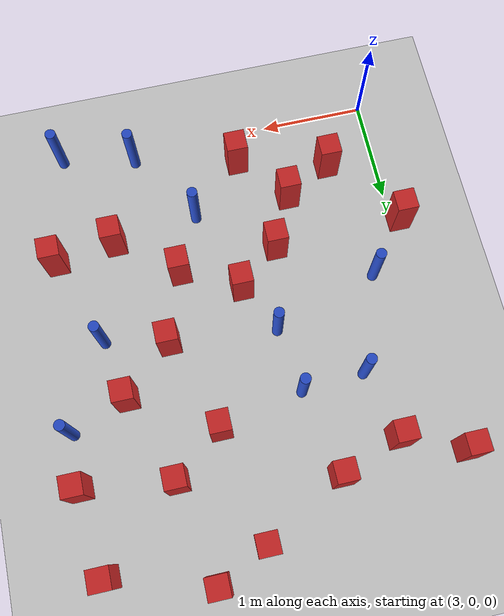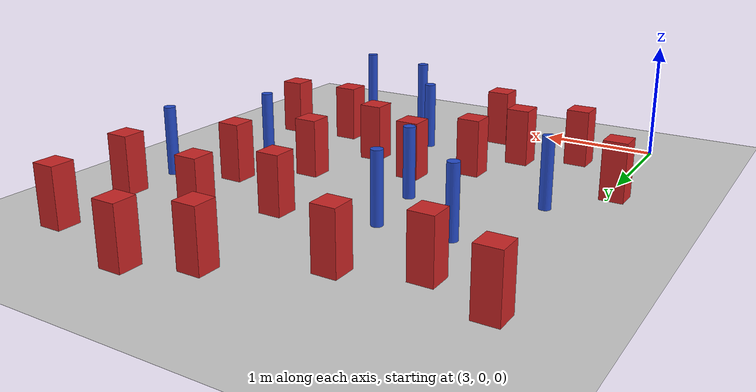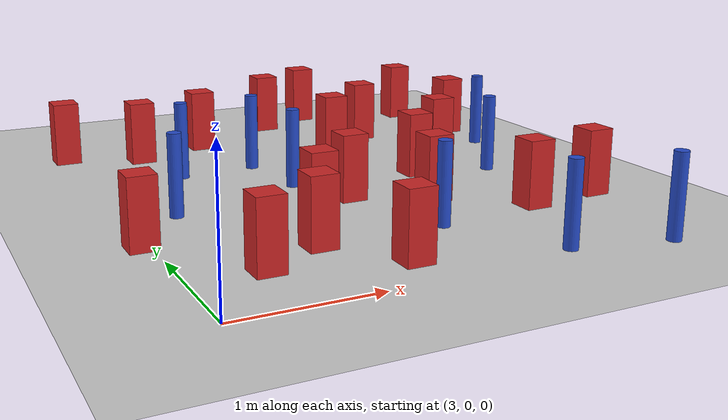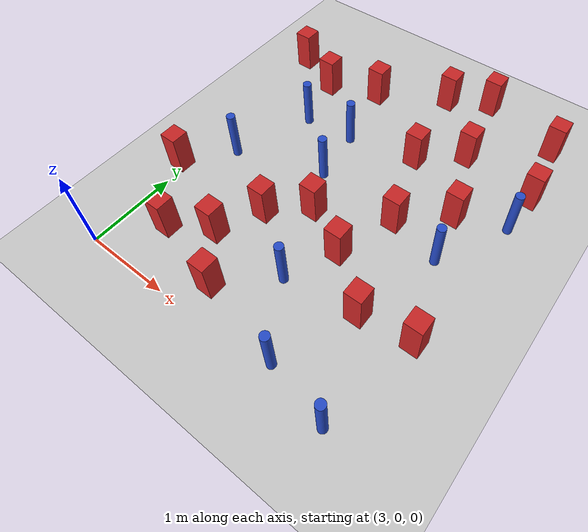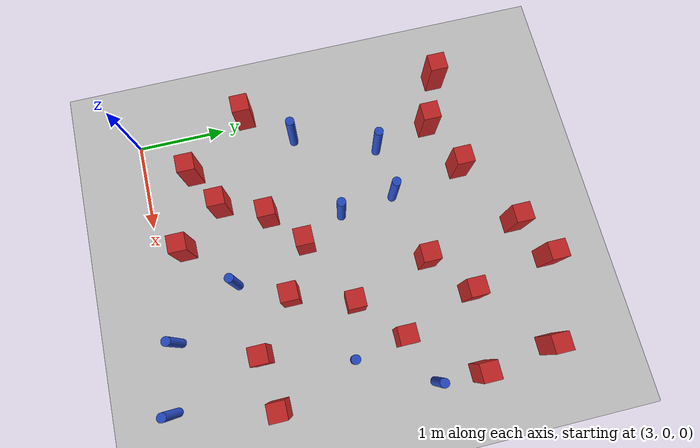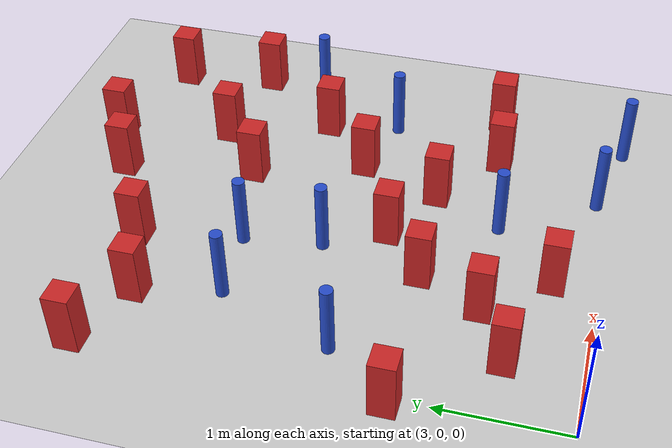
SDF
<sdf version="1.6">
 <world name="default">
  <model name="ground_plane">
   <static>1</static>
   <link name="link">
    <collision name="collision">
     <geometry><plane><normal>0 0 1</normal><size>100 100</size></plane></geometry>
     <surface><friction><ode><mu>100</mu><mu2>50</mu2></ode></friction></surface>
    </collision>
    <visual name="visual">
     <cast_shadows>0</cast_shadows>
     <geometry><plane><normal>0 0 1</normal><size>100 100</size></plane></geometry>
     <material>
      <ambient>1.0 1.0 1.0 1.0</ambient>
      <diffuse>0.8 0.8 0.8 1.0</diffuse>
      <specular>0.01 0.01 0.01 1.000000</specular>
     </material>
    </visual>
   </link>
  </model>
  <model name="square_post_obstacle3">
   <static>true</static>
   <pose>5.14463022854 1.38851551591 1.91545236811e-07 -7.35059704564e-06 1.12565212e-07 2.39332434364e-05</pose>
   <link name="link">
    <pose>0 0 0.25 0 -0 0</pose>
    <inertial>
     <mass>100</mass>
     <inertia>
      <ixx>0.166667</ixx>
      <ixy>0</ixy>
      <ixz>0</ixz>
      <iyy>0.166667</iyy>
      <iyz>0</iyz>
      <izz>0.166667</izz>
     </inertia>
    </inertial>
    <collision name="collision"><geometry><box><size>.2 .2 .5</size></box></geometry></collision>
    <visual name="visual">
     <geometry><box><size>.2 .2 .5</size></box></geometry>
     <material>
      <script><name>Gazebo/Red</name><uri>file://media/materials/scripts/gazebo.material</uri></script>
     </material>
    </visual>
   </link>
  </model>
  <model name="pole_obstacle3">
   <static>true</static>
   <pose>5.97604875241 1.91269889403 7.38925637345e-09 -8.471706928e-08 1.24976765134e-08 -1.74513093015e-07</pose>
   <link name="link">
    <pose>0 0 0.3 0 -0 0</pose>
    <inertial>
     <mass>1</mass>
     <inertia><ixx>0.145833</ixx><ixy>0</ixy><ixz>0</ixz><iyy>0.145833</iyy><iyz>0</iyz><izz>0.125</izz></inertia>
    </inertial>
    <collision name="collision">
     <geometry><cylinder><radius>0.05</radius><length>.6</length></cylinder></geometry>
    </collision>
    <visual name="visual">
     <geometry><cylinder><radius>0.05</radius><length>.6</length></cylinder></geometry>
     <material>
      <script><name>Gazebo/Blue</name><uri>file://media/materials/scripts/gazebo.material</uri></script>
     </material>
    </visual>
   </link>
  </model>
  <model name="square_post_obstacle10">
   <static>true</static>
   <pose>3.95411249766 0.828914553557 1.91545236811e-07 -7.35059704564e-06 1.12565212e-07 2.39332434364e-05</pose>
   <link name="link">
    <pose>0 0 0.25 0 -0 0</pose>
    <inertial>
     <mass>100</mass>
     <inertia>
      <ixx>0.166667</ixx>
      <ixy>0</ixy>
      <ixz>0</ixz>
      <iyy>0.166667</iyy>
      <iyz>0</iyz>
      <izz>0.166667</izz>
     </inertia>
    </inertial>
    <collision name="collision"><geometry><box><size>.2 .2 .5</size></box></geometry></collision>
    <visual name="visual">
     <geometry><box><size>.2 .2 .5</size></box></geometry>
     <material>
      <script><name>Gazebo/Red</name><uri>file://media/materials/scripts/gazebo.material</uri></script>
     </material>
    </visual>
   </link>
  </model>
  <model name="square_post_obstacle24">
   <static>true</static>
   <pose>4.1140175235 3.5957617354 1.91545236811e-07 -7.35059704564e-06 1.12565212e-07 2.39332434364e-05</pose>
   <link name="link">
    <pose>0 0 0.25 0 -0 0</pose>
    <inertial>
     <mass>100</mass>
     <inertia>
      <ixx>0.166667</ixx>
      <ixy>0</ixy>
      <ixz>0</ixz>
      <iyy>0.166667</iyy>
      <iyz>0</iyz>
      <izz>0.166667</izz>
     </inertia>
    </inertial>
    <collision name="collision"><geometry><box><size>.2 .2 .5</size></box></geometry></collision>
    <visual name="visual">
     <geometry><box><size>.2 .2 .5</size></box></geometry>
     <material>
      <script><name>Gazebo/Red</name><uri>file://media/materials/scripts/gazebo.material</uri></script>
     </material>
    </visual>
   </link>
  </model>
  <model name="square_post_obstacle29">
   <static>true</static>
   <pose>5.37796084478 2.05873233152 1.91545236811e-07 -7.35059704564e-06 1.12565212e-07 2.39332434364e-05</pose>
   <link name="link">
    <pose>0 0 0.25 0 -0 0</pose>
    <inertial>
     <mass>100</mass>
     <inertia>
      <ixx>0.166667</ixx>
      <ixy>0</ixy>
      <ixz>0</ixz>
      <iyy>0.166667</iyy>
      <iyz>0</iyz>
      <izz>0.166667</izz>
     </inertia>
    </inertial>
    <collision name="collision"><geometry><box><size>.2 .2 .5</size></box></geometry></collision>
    <visual name="visual">
     <geometry><box><size>.2 .2 .5</size></box></geometry>
     <material>
      <script><name>Gazebo/Red</name><uri>file://media/materials/scripts/gazebo.material</uri></script>
     </material>
    </visual>
   </link>
  </model>
  <model name="square_post_obstacle31">
   <static>true</static>
   <pose>3.49266288055 0.577960330679 1.91545236811e-07 -7.35059704564e-06 1.12565212e-07 2.39332434364e-05</pose>
   <link name="link">
    <pose>0 0 0.25 0 -0 0</pose>
    <inertial>
     <mass>100</mass>
     <inertia>
      <ixx>0.166667</ixx>
      <ixy>0</ixy>
      <ixz>0</ixz>
      <iyy>0.166667</iyy>
      <iyz>0</iyz>
      <izz>0.166667</izz>
     </inertia>
    </inertial>
    <collision name="collision"><geometry><box><size>.2 .2 .5</size></box></geometry></collision>
    <visual name="visual">
     <geometry><box><size>.2 .2 .5</size></box></geometry>
     <material>
      <script><name>Gazebo/Red</name><uri>file://media/materials/scripts/gazebo.material</uri></script>
     </material>
    </visual>
   </link>
  </model>
  <model name="square_post_obstacle35">
   <static>true</static>
   <pose>5.0781885368 2.94960396655 1.91545236811e-07 -7.35059704564e-06 1.12565212e-07 2.39332434364e-05</pose>
   <link name="link">
    <pose>0 0 0.25 0 -0 0</pose>
    <inertial>
     <mass>100</mass>
     <inertia>
      <ixx>0.166667</ixx>
      <ixy>0</ixy>
      <ixz>0</ixz>
      <iyy>0.166667</iyy>
      <iyz>0</iyz>
      <izz>0.166667</izz>
     </inertia>
    </inertial>
    <collision name="collision"><geometry><box><size>.2 .2 .5</size></box></geometry></collision>
    <visual name="visual">
     <geometry><box><size>.2 .2 .5</size></box></geometry>
     <material>
      <script><name>Gazebo/Red</name><uri>file://media/materials/scripts/gazebo.material</uri></script>
     </material>
    </visual>
   </link>
  </model>
  <model name="square_post_obstacle65">
   <static>true</static>
   <pose>4.60160197744 1.67271273966 1.91545236811e-07 -7.35059704564e-06 1.12565212e-07 2.39332434364e-05</pose>
   <link name="link">
    <pose>0 0 0.25 0 -0 0</pose>
    <inertial>
     <mass>100</mass>
     <inertia>
      <ixx>0.166667</ixx>
      <ixy>0</ixy>
      <ixz>0</ixz>
      <iyy>0.166667</iyy>
      <iyz>0</iyz>
      <izz>0.166667</izz>
     </inertia>
    </inertial>
    <collision name="collision"><geometry><box><size>.2 .2 .5</size></box></geometry></collision>
    <visual name="visual">
     <geometry><box><size>.2 .2 .5</size></box></geometry>
     <material>
      <script><name>Gazebo/Red</name><uri>file://media/materials/scripts/gazebo.material</uri></script>
     </material>
    </visual>
   </link>
  </model>
  <model name="square_post_obstacle67">
   <static>true</static>
   <pose>2.95330168905 3.61341388761 1.91545236811e-07 -7.35059704564e-06 1.12565212e-07 2.39332434364e-05</pose>
   <link name="link">
    <pose>0 0 0.25 0 -0 0</pose>
    <inertial>
     <mass>100</mass>
     <inertia>
      <ixx>0.166667</ixx>
      <ixy>0</ixy>
      <ixz>0</ixz>
      <iyy>0.166667</iyy>
      <iyz>0</iyz>
      <izz>0.166667</izz>
     </inertia>
    </inertial>
    <collision name="collision"><geometry><box><size>.2 .2 .5</size></box></geometry></collision>
    <visual name="visual">
     <geometry><box><size>.2 .2 .5</size></box></geometry>
     <material>
      <script><name>Gazebo/Red</name><uri>file://media/materials/scripts/gazebo.material</uri></script>
     </material>
    </visual>
   </link>
  </model>
  <model name="square_post_obstacle77">
   <static>true</static>
   <pose>6.28894683591 1.03286256418 1.91545236811e-07 -7.35059704564e-06 1.12565212e-07 2.39332434364e-05</pose>
   <link name="link">
    <pose>0 0 0.25 0 -0 0</pose>
    <inertial>
     <mass>100</mass>
     <inertia>
      <ixx>0.166667</ixx>
      <ixy>0</ixy>
      <ixz>0</ixz>
      <iyy>0.166667</iyy>
      <iyz>0</iyz>
      <izz>0.166667</izz>
     </inertia>
    </inertial>
    <collision name="collision"><geometry><box><size>.2 .2 .5</size></box></geometry></collision>
    <visual name="visual">
     <geometry><box><size>.2 .2 .5</size></box></geometry>
     <material>
      <script><name>Gazebo/Red</name><uri>file://media/materials/scripts/gazebo.material</uri></script>
     </material>
    </visual>
   </link>
  </model>
  <model name="square_post_obstacle78">
   <static>true</static>
   <pose>4.19489611572 1.33245377225 1.91545236811e-07 -7.35059704564e-06 1.12565212e-07 2.39332434364e-05</pose>
   <link name="link">
    <pose>0 0 0.25 0 -0 0</pose>
    <inertial>
     <mass>100</mass>
     <inertia>
      <ixx>0.166667</ixx>
      <ixy>0</ixy>
      <ixz>0</ixz>
      <iyy>0.166667</iyy>
      <iyz>0</iyz>
      <izz>0.166667</izz>
     </inertia>
    </inertial>
    <collision name="collision"><geometry><box><size>.2 .2 .5</size></box></geometry></collision>
    <visual name="visual">
     <geometry><box><size>.2 .2 .5</size></box></geometry>
     <material>
      <script><name>Gazebo/Red</name><uri>file://media/materials/scripts/gazebo.material</uri></script>
     </material>
    </visual>
   </link>
  </model>
  <model name="pole_obstacle94">
   <static>true</static>
   <pose>4.3595060855 2.14647876484 7.38925637345e-09 -8.47170692798e-08 1.24976764937e-08 -1.74513093023e-07</pose>
   <link name="link">
    <pose>0 0 0.3 0 -0 0</pose>
    <inertial>
     <mass>1</mass>
     <inertia><ixx>0.145833</ixx><ixy>0</ixy><ixz>0</ixz><iyy>0.145833</iyy><iyz>0</iyz><izz>0.125</izz></inertia>
    </inertial>
    <collision name="collision">
     <geometry><cylinder><radius>0.05</radius><length>.6</length></cylinder></geometry>
    </collision>
    <visual name="visual">
     <geometry><cylinder><radius>0.05</radius><length>.6</length></cylinder></geometry>
     <material>
      <script><name>Gazebo/Blue</name><uri>file://media/materials/scripts/gazebo.material</uri></script>
     </material>
    </visual>
   </link>
  </model>
  <model name="square_post_obstacle99">
   <static>true</static>
   <pose>5.70543708673 0.956556716797 1.91545236811e-07 -7.35059704564e-06 1.12565212e-07 2.39332434364e-05</pose>
   <link name="link">
    <pose>0 0 0.25 0 -0 0</pose>
    <inertial>
     <mass>100</mass>
     <inertia>
      <ixx>0.166667</ixx>
      <ixy>0</ixy>
      <ixz>0</ixz>
      <iyy>0.166667</iyy>
      <iyz>0</iyz>
      <izz>0.166667</izz>
     </inertia>
    </inertial>
    <collision name="collision"><geometry><box><size>.2 .2 .5</size></box></geometry></collision>
    <visual name="visual">
     <geometry><box><size>.2 .2 .5</size></box></geometry>
     <material>
      <script><name>Gazebo/Red</name><uri>file://media/materials/scripts/gazebo.material</uri></script>
     </material>
    </visual>
   </link>
  </model>
  <model name="square_post_obstacle102">
   <static>true</static>
   <pose>5.36546399933 4.27174322469 1.91545236811e-07 -7.35059704564e-06 1.12565212e-07 2.39332434364e-05</pose>
   <link name="link">
    <pose>0 0 0.25 0 -0 0</pose>
    <inertial>
     <mass>100</mass>
     <inertia>
      <ixx>0.166667</ixx>
      <ixy>0</ixy>
      <ixz>0</ixz>
      <iyy>0.166667</iyy>
      <iyz>0</iyz>
      <izz>0.166667</izz>
     </inertia>
    </inertial>
    <collision name="collision"><geometry><box><size>.2 .2 .5</size></box></geometry></collision>
    <visual name="visual">
     <geometry><box><size>.2 .2 .5</size></box></geometry>
     <material>
      <script><name>Gazebo/Red</name><uri>file://media/materials/scripts/gazebo.material</uri></script>
     </material>
    </visual>
   </link>
  </model>
  <model name="pole_obstacle118">
   <static>true</static>
   <pose>3.67298668401 2.73111250935 7.38925637345e-09 -8.47170692798e-08 1.24976764939e-08 -1.74513093025e-07</pose>
   <link name="link">
    <pose>0 0 0.3 0 -0 0</pose>
    <inertial>
     <mass>1</mass>
     <inertia><ixx>0.145833</ixx><ixy>0</ixy><ixz>0</ixz><iyy>0.145833</iyy><iyz>0</iyz><izz>0.125</izz></inertia>
    </inertial>
    <collision name="collision">
     <geometry><cylinder><radius>0.05</radius><length>.6</length></cylinder></geometry>
    </collision>
    <visual name="visual">
     <geometry><cylinder><radius>0.05</radius><length>.6</length></cylinder></geometry>
     <material>
      <script><name>Gazebo/Blue</name><uri>file://media/materials/scripts/gazebo.material</uri></script>
     </material>
    </visual>
   </link>
  </model>
  <model name="square_post_obstacle110">
   <static>true</static>
   <pose>5.54735582471 3.33137913863 1.91545236811e-07 -7.35059704564e-06 1.12565212e-07 2.39332434364e-05</pose>
   <link name="link">
    <pose>0 0 0.25 0 -0 0</pose>
    <inertial>
     <mass>100</mass>
     <inertia>
      <ixx>0.166667</ixx>
      <ixy>0</ixy>
      <ixz>0</ixz>
      <iyy>0.166667</iyy>
      <iyz>0</iyz>
      <izz>0.166667</izz>
     </inertia>
    </inertial>
    <collision name="collision"><geometry><box><size>.2 .2 .5</size></box></geometry></collision>
    <visual name="visual">
     <geometry><box><size>.2 .2 .5</size></box></geometry>
     <material>
      <script><name>Gazebo/Red</name><uri>file://media/materials/scripts/gazebo.material</uri></script>
     </material>
    </visual>
   </link>
  </model>
  <model name="square_post_obstacle121">
   <static>true</static>
   <pose>6.40349135738 3.20865403521 1.91545236811e-07 -7.35059704564e-06 1.12565212e-07 2.39332434364e-05</pose>
   <link name="link">
    <pose>0 0 0.25 0 -0 0</pose>
    <inertial>
     <mass>100</mass>
     <inertia>
      <ixx>0.166667</ixx>
      <ixy>0</ixy>
      <ixz>0</ixz>
      <iyy>0.166667</iyy>
      <iyz>0</iyz>
      <izz>0.166667</izz>
     </inertia>
    </inertial>
    <collision name="collision"><geometry><box><size>.2 .2 .5</size></box></geometry></collision>
    <visual name="visual">
     <geometry><box><size>.2 .2 .5</size></box></geometry>
     <material>
      <script><name>Gazebo/Red</name><uri>file://media/materials/scripts/gazebo.material</uri></script>
     </material>
    </visual>
   </link>
  </model>
  <model name="pole_obstacle139">
   <static>true</static>
   <pose>3.33122110136 1.80654924732 7.38925637345e-09 -8.471706928e-08 1.24976765152e-08 -1.74513093012e-07</pose>
   <link name="link">
    <pose>0 0 0.3 0 -0 0</pose>
    <inertial>
     <mass>1</mass>
     <inertia><ixx>0.145833</ixx><ixy>0</ixy><ixz>0</ixz><iyy>0.145833</iyy><iyz>0</iyz><izz>0.125</izz></inertia>
    </inertial>
    <collision name="collision">
     <geometry><cylinder><radius>0.05</radius><length>.6</length></cylinder></geometry>
    </collision>
    <visual name="visual">
     <geometry><cylinder><radius>0.05</radius><length>.6</length></cylinder></geometry>
     <material>
      <script><name>Gazebo/Blue</name><uri>file://media/materials/scripts/gazebo.material</uri></script>
     </material>
    </visual>
   </link>
  </model>
  <model name="pole_obstacle141">
   <static>true</static>
   <pose>5.36460090257 0.103062775015 7.38925637345e-09 -8.47170692799e-08 1.24976765066e-08 -1.74513093016e-07</pose>
   <link name="link">
    <pose>0 0 0.3 0 -0 0</pose>
    <inertial>
     <mass>1</mass>
     <inertia><ixx>0.145833</ixx><ixy>0</ixy><ixz>0</ixz><iyy>0.145833</iyy><iyz>0</iyz><izz>0.125</izz></inertia>
    </inertial>
    <collision name="collision">
     <geometry><cylinder><radius>0.05</radius><length>.6</length></cylinder></geometry>
    </collision>
    <visual name="visual">
     <geometry><cylinder><radius>0.05</radius><length>.6</length></cylinder></geometry>
     <material>
      <script><name>Gazebo/Blue</name><uri>file://media/materials/scripts/gazebo.material</uri></script>
     </material>
    </visual>
   </link>
  </model>
  <model name="square_post_obstacle136">
   <static>true</static>
   <pose>4.36298839099 0.341302831048 1.91545236811e-07 -7.35059704564e-06 1.12565212e-07 2.39332434364e-05</pose>
   <link name="link">
    <pose>0 0 0.25 0 -0 0</pose>
    <inertial>
     <mass>100</mass>
     <inertia>
      <ixx>0.166667</ixx>
      <ixy>0</ixy>
      <ixz>0</ixz>
      <iyy>0.166667</iyy>
      <iyz>0</iyz>
      <izz>0.166667</izz>
     </inertia>
    </inertial>
    <collision name="collision"><geometry><box><size>.2 .2 .5</size></box></geometry></collision>
    <visual name="visual">
     <geometry><box><size>.2 .2 .5</size></box></geometry>
     <material>
      <script><name>Gazebo/Red</name><uri>file://media/materials/scripts/gazebo.material</uri></script>
     </material>
    </visual>
   </link>
  </model>
  <model name="square_post_obstacle137">
   <static>true</static>
   <pose>6.29671615669 4.00153702977 1.91545236811e-07 -7.35059704564e-06 1.12565212e-07 2.39332434364e-05</pose>
   <link name="link">
    <pose>0 0 0.25 0 -0 0</pose>
    <inertial>
     <mass>100</mass>
     <inertia>
      <ixx>0.166667</ixx>
      <ixy>0</ixy>
      <ixz>0</ixz>
      <iyy>0.166667</iyy>
      <iyz>0</iyz>
      <izz>0.166667</izz>
     </inertia>
    </inertial>
    <collision name="collision"><geometry><box><size>.2 .2 .5</size></box></geometry></collision>
    <visual name="visual">
     <geometry><box><size>.2 .2 .5</size></box></geometry>
     <material>
      <script><name>Gazebo/Red</name><uri>file://media/materials/scripts/gazebo.material</uri></script>
     </material>
    </visual>
   </link>
  </model>
  <model name="pole_obstacle154">
   <static>true</static>
   <pose>4.27350407744 2.77445538911 7.38925637345e-09 -8.47170692798e-08 1.24976764937e-08 -1.74513093023e-07</pose>
   <link name="link">
    <pose>0 0 0.3 0 -0 0</pose>
    <inertial>
     <mass>1</mass>
     <inertia><ixx>0.145833</ixx><ixy>0</ixy><ixz>0</ixz><iyy>0.145833</iyy><iyz>0</iyz><izz>0.125</izz></inertia>
    </inertial>
    <collision name="collision">
     <geometry><cylinder><radius>0.05</radius><length>.6</length></cylinder></geometry>
    </collision>
    <visual name="visual">
     <geometry><cylinder><radius>0.05</radius><length>.6</length></cylinder></geometry>
     <material>
      <script><name>Gazebo/Blue</name><uri>file://media/materials/scripts/gazebo.material</uri></script>
     </material>
    </visual>
   </link>
  </model>
  <model name="pole_obstacle155">
   <static>true</static>
   <pose>6.07490149262 -0.0525671194133 7.38925637345e-09 -8.47170692799e-08 1.24976765036e-08 -1.7451309302e-07</pose>
   <link name="link">
    <pose>0 0 0.3 0 -0 0</pose>
    <inertial>
     <mass>1</mass>
     <inertia><ixx>0.145833</ixx><ixy>0</ixy><ixz>0</ixz><iyy>0.145833</iyy><iyz>0</iyz><izz>0.125</izz></inertia>
    </inertial>
    <collision name="collision">
     <geometry><cylinder><radius>0.05</radius><length>.6</length></cylinder></geometry>
    </collision>
    <visual name="visual">
     <geometry><cylinder><radius>0.05</radius><length>.6</length></cylinder></geometry>
     <material>
      <script><name>Gazebo/Blue</name><uri>file://media/materials/scripts/gazebo.material</uri></script>
     </material>
    </visual>
   </link>
  </model>
  <model name="square_post_obstacle147">
   <static>true</static>
   <pose>2.93563737621 1.29784893824 1.91545236811e-07 -7.35059704564e-06 1.12565212e-07 2.39332434364e-05</pose>
   <link name="link">
    <pose>0 0 0.25 0 -0 0</pose>
    <inertial>
     <mass>100</mass>
     <inertia>
      <ixx>0.166667</ixx>
      <ixy>0</ixy>
      <ixz>0</ixz>
      <iyy>0.166667</iyy>
      <iyz>0</iyz>
      <izz>0.166667</izz>
     </inertia>
    </inertial>
    <collision name="collision"><geometry><box><size>.2 .2 .5</size></box></geometry></collision>
    <visual name="visual">
     <geometry><box><size>.2 .2 .5</size></box></geometry>
     <material>
      <script><name>Gazebo/Red</name><uri>file://media/materials/scripts/gazebo.material</uri></script>
     </material>
    </visual>
   </link>
  </model>
  <model name="square_post_obstacle163">
   <static>true</static>
   <pose>5.85555483544 2.49526825522 1.91545236811e-07 -7.35059704564e-06 1.12565212e-07 2.39332434364e-05</pose>
   <link name="link">
    <pose>0 0 0.25 0 -0 0</pose>
    <inertial>
     <mass>100</mass>
     <inertia>
      <ixx>0.166667</ixx>
      <ixy>0</ixy>
      <ixz>0</ixz>
      <iyy>0.166667</iyy>
      <iyz>0</iyz>
      <izz>0.166667</izz>
     </inertia>
    </inertial>
    <collision name="collision"><geometry><box><size>.2 .2 .5</size></box></geometry></collision>
    <visual name="visual">
     <geometry><box><size>.2 .2 .5</size></box></geometry>
     <material>
      <script><name>Gazebo/Red</name><uri>file://media/materials/scripts/gazebo.material</uri></script>
     </material>
    </visual>
   </link>
  </model>
  <model name="square_post_obstacle182">
   <static>true</static>
   <pose>4.89114206241 4.03238972312 1.91545236811e-07 -7.35059704564e-06 1.12565212e-07 2.39332434364e-05</pose>
   <link name="link">
    <pose>0 0 0.25 0 -0 0</pose>
    <inertial>
     <mass>100</mass>
     <inertia>
      <ixx>0.166667</ixx>
      <ixy>0</ixy>
      <ixz>0</ixz>
      <iyy>0.166667</iyy>
      <iyz>0</iyz>
      <izz>0.166667</izz>
     </inertia>
    </inertial>
    <collision name="collision"><geometry><box><size>.2 .2 .5</size></box></geometry></collision>
    <visual name="visual">
     <geometry><box><size>.2 .2 .5</size></box></geometry>
     <material>
      <script><name>Gazebo/Red</name><uri>file://media/materials/scripts/gazebo.material</uri></script>
     </material>
    </visual>
   </link>
  </model>
  <model name="square_post_obstacle192">
   <static>true</static>
   <pose>3.52108912221 3.37461014823 1.91545236811e-07 -7.35059704564e-06 1.12565212e-07 2.39332434364e-05</pose>
   <link name="link">
    <pose>0 0 0.25 0 -0 0</pose>
    <inertial>
     <mass>100</mass>
     <inertia>
      <ixx>0.166667</ixx>
      <ixy>0</ixy>
      <ixz>0</ixz>
      <iyy>0.166667</iyy>
      <iyz>0</iyz>
      <izz>0.166667</izz>
     </inertia>
    </inertial>
    <collision name="collision"><geometry><box><size>.2 .2 .5</size></box></geometry></collision>
    <visual name="visual">
     <geometry><box><size>.2 .2 .5</size></box></geometry>
     <material>
      <script><name>Gazebo/Red</name><uri>file://media/materials/scripts/gazebo.material</uri></script>
     </material>
    </visual>
   </link>
  </model>
  <model name="pole_obstacle191">
   <static>true</static>
   <pose>6.39631408897 2.70836992009 7.38925637345e-09 -8.47170692798e-08 1.24976764937e-08 -1.74513093023e-07</pose>
   <link name="link">
    <pose>0 0 0.3 0 -0 0</pose>
    <inertial>
     <mass>1</mass>
     <inertia><ixx>0.145833</ixx><ixy>0</ixy><ixz>0</ixz><iyy>0.145833</iyy><iyz>0</iyz><izz>0.125</izz></inertia>
    </inertial>
    <collision name="collision">
     <geometry><cylinder><radius>0.05</radius><length>.6</length></cylinder></geometry>
    </collision>
    <visual name="visual">
     <geometry><cylinder><radius>0.05</radius><length>.6</length></cylinder></geometry>
     <material>
      <script><name>Gazebo/Blue</name><uri>file://media/materials/scripts/gazebo.material</uri></script>
     </material>
    </visual>
   </link>
  </model>
  <model name="pole_obstacle204">
   <static>true</static>
   <pose>4.88209614093 0.835302304923 7.38925637345e-09 -8.47170692799e-08 1.24976765038e-08 -1.74513093018e-07</pose>
   <link name="link">
    <pose>0 0 0.3 0 -0 0</pose>
    <inertial>
     <mass>1</mass>
     <inertia><ixx>0.145833</ixx><ixy>0</ixy><ixz>0</ixz><iyy>0.145833</iyy><iyz>0</iyz><izz>0.125</izz></inertia>
    </inertial>
    <collision name="collision">
     <geometry><cylinder><radius>0.05</radius><length>.6</length></cylinder></geometry>
    </collision>
    <visual name="visual">
     <geometry><cylinder><radius>0.05</radius><length>.6</length></cylinder></geometry>
     <material>
      <script><name>Gazebo/Blue</name><uri>file://media/materials/scripts/gazebo.material</uri></script>
     </material>
    </visual>
   </link>
  </model>
 </world>
</sdf>
